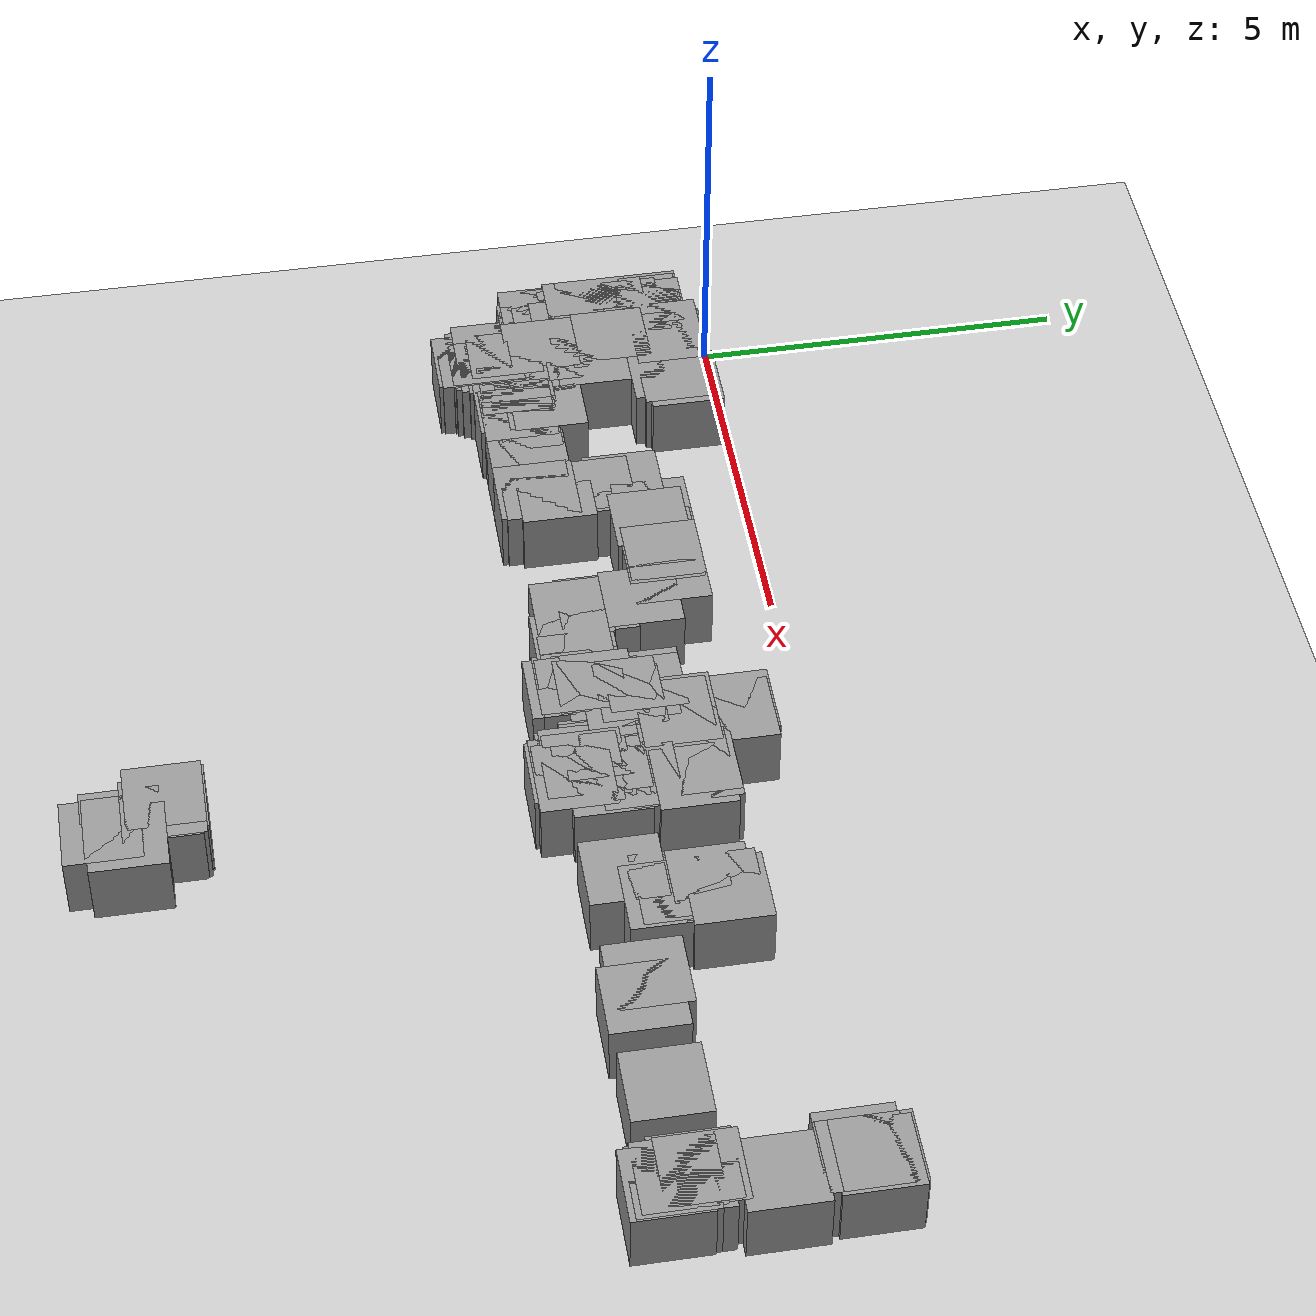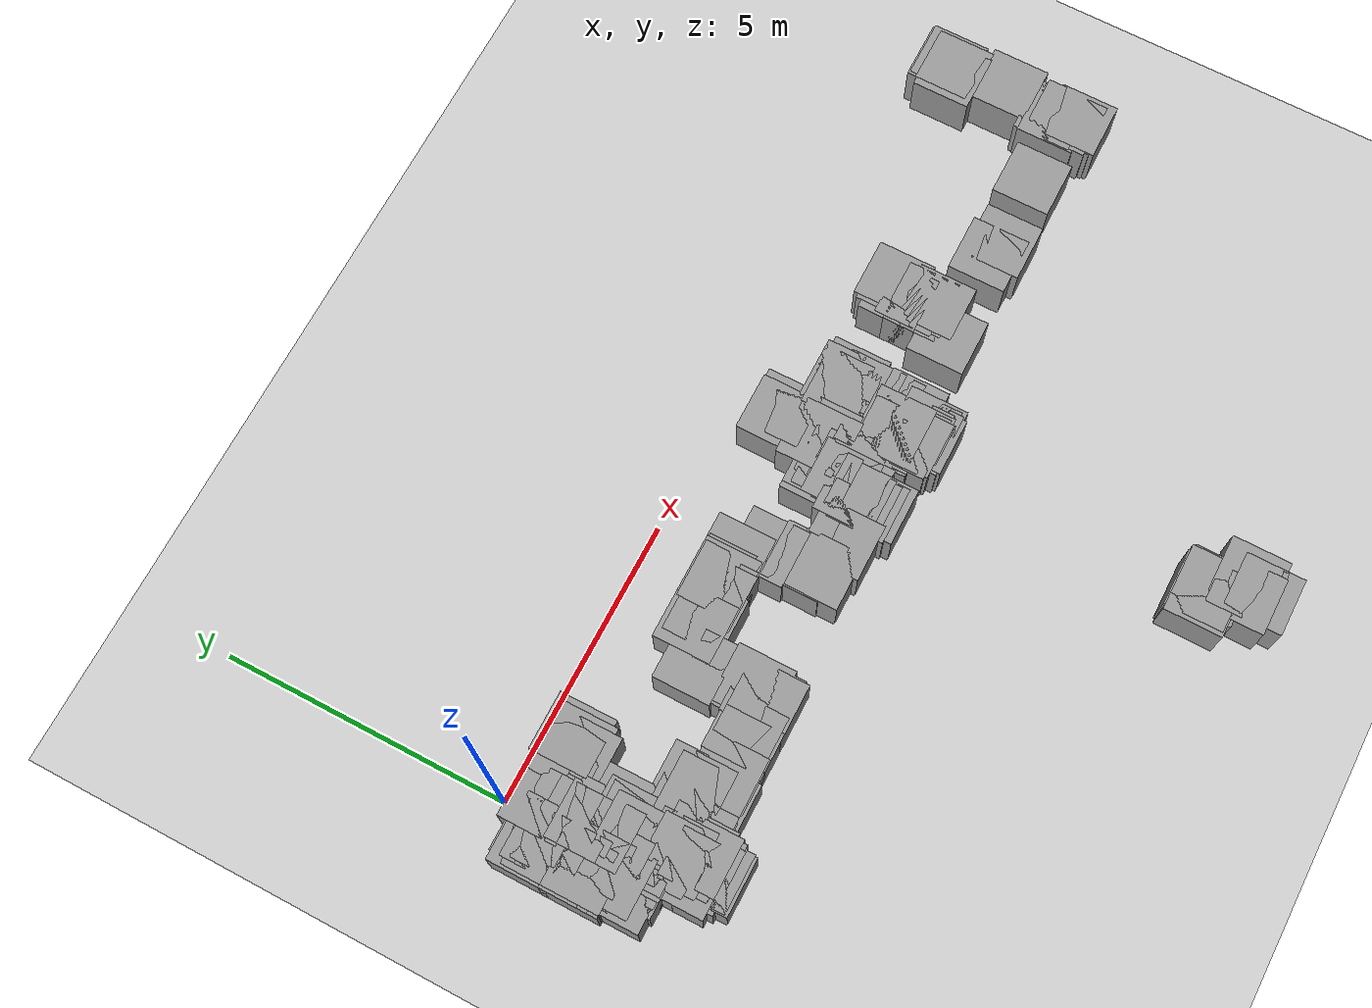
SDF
<sdf version="1.7">
 <world name="default">
  <model name="ground_plane">
   <static>1</static>
   <link name="link">
    <collision name="collision">
     <geometry><plane><normal>0 0 1</normal><size>100 100</size></plane></geometry>
     <surface>
      <contact><collide_bitmask>65535</collide_bitmask></contact>
      <friction><ode><mu>100</mu><mu2>50</mu2></ode></friction>
     </surface>
    </collision>
    <visual name="visual">
     <cast_shadows>0</cast_shadows>
     <geometry><plane><normal>0 0 1</normal><size>100 100</size></plane></geometry>
     <material>
      <script><uri>file://media/materials/scripts/gazebo.material</uri><name>Gazebo/Grey</name></script>
     </material>
    </visual>
   </link>
  </model>
  <include>
   <uri>model://unit_box</uri>
   <name>map_box_289</name>
   <pose>14.4575 -0.5850 0.3500 0 0 0</pose>
   <scale>0.050 4.100 0.700</scale>
  </include>
  <include>
   <uri>model://unit_box</uri>
   <name>map_box_348</name>
   <pose>0.2075 -0.6350 0.3500 0 0 0</pose>
   <scale>0.050 0.300 0.700</scale>
  </include>
  <include>
   <uri>model://unit_box</uri>
   <name>map_box_350</name>
   <pose>0.3575 -1.5100 0.3500 0 0 0</pose>
   <scale>0.050 1.950 0.700</scale>
  </include>
  <include>
   <uri>model://unit_box</uri>
   <name>map_box_351</name>
   <pose>1.3075 -0.5600 0.3500 0 0 0</pose>
   <scale>0.050 0.050 0.700</scale>
  </include>
  <include>
   <uri>model://unit_box</uri>
   <name>map_box_352</name>
   <pose>14.4075 -0.5600 0.3500 0 0 0</pose>
   <scale>0.050 0.050 0.700</scale>
  </include>
  <include>
   <uri>model://unit_box</uri>
   <name>map_box_353</name>
   <pose>0.4075 -0.6100 0.3500 0 0 0</pose>
   <scale>0.050 0.050 0.700</scale>
  </include>
  <include>
   <uri>model://unit_box</uri>
   <name>map_box_354</name>
   <pose>1.2075 -0.6350 0.3500 0 0 0</pose>
   <scale>0.050 0.100 0.700</scale>
  </include>
  <include>
   <uri>model://unit_box</uri>
   <name>map_box_355</name>
   <pose>14.4075 -0.7100 0.3500 0 0 0</pose>
   <scale>0.050 0.150 0.700</scale>
  </include>
  <include>
   <uri>model://unit_box</uri>
   <name>map_box_356</name>
   <pose>-0.4425 -0.8100 0.3500 0 0 0</pose>
   <scale>0.050 0.250 0.700</scale>
  </include>
  <include>
   <uri>model://unit_box</uri>
   <name>map_box_357</name>
   <pose>14.2825 -0.7350 0.3500 0 0 0</pose>
   <scale>0.200 0.100 0.700</scale>
  </include>
  <include>
   <uri>model://unit_box</uri>
   <name>map_box_358</name>
   <pose>-0.2925 -0.7850 0.3500 0 0 0</pose>
   <scale>0.150 0.100 0.700</scale>
  </include>
  <include>
   <uri>model://unit_box</uri>
   <name>map_box_359</name>
   <pose>1.1075 -0.7600 0.3500 0 0 0</pose>
   <scale>0.050 0.050 0.700</scale>
  </include>
  <include>
   <uri>model://unit_box</uri>
   <name>map_box_360</name>
   <pose>14.5075 -1.6850 0.3500 0 0 0</pose>
   <scale>0.050 1.900 0.700</scale>
  </include>
  <include>
   <uri>model://unit_box</uri>
   <name>map_box_361</name>
   <pose>-0.3925 -0.8350 0.3500 0 0 0</pose>
   <scale>0.050 0.100 0.700</scale>
  </include>
  <include>
   <uri>model://unit_box</uri>
   <name>map_box_362</name>
   <pose>-0.2425 -0.8850 0.3500 0 0 0</pose>
   <scale>0.050 0.100 0.700</scale>
  </include>
  <include>
   <uri>model://unit_box</uri>
   <name>map_box_363</name>
   <pose>-0.2925 -0.9600 0.3500 0 0 0</pose>
   <scale>0.050 0.150 0.700</scale>
  </include>
  <include>
   <uri>model://unit_box</uri>
   <name>map_box_364</name>
   <pose>0.2075 -0.9350 0.3500 0 0 0</pose>
   <scale>0.050 0.100 0.700</scale>
  </include>
  <include>
   <uri>model://unit_box</uri>
   <name>map_box_365</name>
   <pose>7.3825 -0.9350 0.3500 0 0 0</pose>
   <scale>0.200 0.100 0.700</scale>
  </include>
  <include>
   <uri>model://unit_box</uri>
   <name>map_box_366</name>
   <pose>7.5075 -0.9600 0.3500 0 0 0</pose>
   <scale>0.050 0.050 0.700</scale>
  </include>
  <include>
   <uri>model://unit_box</uri>
   <name>map_box_367</name>
   <pose>-0.2425 -1.0350 0.3500 0 0 0</pose>
   <scale>0.050 0.100 0.700</scale>
  </include>
  <include>
   <uri>model://unit_box</uri>
   <name>map_box_368</name>
   <pose>7.3075 -1.6850 0.3500 0 0 0</pose>
   <scale>0.050 1.400 0.700</scale>
  </include>
  <include>
   <uri>model://unit_box</uri>
   <name>map_box_369</name>
   <pose>7.4575 -1.6850 0.3500 0 0 0</pose>
   <scale>0.050 1.400 0.700</scale>
  </include>
  <include>
   <uri>model://unit_box</uri>
   <name>map_box_370</name>
   <pose>0.2075 -1.0600 0.3500 0 0 0</pose>
   <scale>0.050 0.050 0.700</scale>
  </include>
  <include>
   <uri>model://unit_box</uri>
   <name>map_box_371</name>
   <pose>7.5075 -1.7100 0.3500 0 0 0</pose>
   <scale>0.050 1.350 0.700</scale>
  </include>
  <include>
   <uri>model://unit_box</uri>
   <name>map_box_372</name>
   <pose>-0.3425 -1.1100 0.3500 0 0 0</pose>
   <scale>0.050 0.050 0.700</scale>
  </include>
  <include>
   <uri>model://unit_box</uri>
   <name>map_box_373</name>
   <pose>-0.2425 -1.1600 0.3500 0 0 0</pose>
   <scale>0.050 0.050 0.700</scale>
  </include>
  <include>
   <uri>model://unit_box</uri>
   <name>map_box_374</name>
   <pose>0.2075 -1.2100 0.3500 0 0 0</pose>
   <scale>0.050 0.050 0.700</scale>
  </include>
  <include>
   <uri>model://unit_box</uri>
   <name>map_box_375</name>
   <pose>0.3075 -1.6350 0.3500 0 0 0</pose>
   <scale>0.050 0.900 0.700</scale>
  </include>
  <include>
   <uri>model://unit_box</uri>
   <name>map_box_376</name>
   <pose>0.2575 -1.2850 0.3500 0 0 0</pose>
   <scale>0.050 0.100 0.700</scale>
  </include>
  <include>
   <uri>model://unit_box</uri>
   <name>map_box_377</name>
   <pose>-0.3925 -1.3100 0.3500 0 0 0</pose>
   <scale>0.050 0.050 0.700</scale>
  </include>
  <include>
   <uri>model://unit_box</uri>
   <name>map_box_378</name>
   <pose>-0.3425 -1.3850 0.3500 0 0 0</pose>
   <scale>0.050 0.100 0.700</scale>
  </include>
  <include>
   <uri>model://unit_box</uri>
   <name>map_box_379</name>
   <pose>3.7325 -1.3850 0.3500 0 0 0</pose>
   <scale>1.100 0.100 0.700</scale>
  </include>
  <include>
   <uri>model://unit_box</uri>
   <name>map_box_380</name>
   <pose>4.3825 -1.3850 0.3500 0 0 0</pose>
   <scale>0.100 0.100 0.700</scale>
  </include>
  <include>
   <uri>model://unit_box</uri>
   <name>map_box_381</name>
   <pose>4.5575 -1.3850 0.3500 0 0 0</pose>
   <scale>0.050 0.100 0.700</scale>
  </include>
  <include>
   <uri>model://unit_box</uri>
   <name>map_box_382</name>
   <pose>4.9825 -1.3850 0.3500 0 0 0</pose>
   <scale>0.700 0.100 0.700</scale>
  </include>
  <include>
   <uri>model://unit_box</uri>
   <name>map_box_383</name>
   <pose>0.2575 -1.4100 0.3500 0 0 0</pose>
   <scale>0.050 0.050 0.700</scale>
  </include>
  <include>
   <uri>model://unit_box</uri>
   <name>map_box_384</name>
   <pose>3.1575 -1.6850 0.3500 0 0 0</pose>
   <scale>0.050 0.600 0.700</scale>
  </include>
  <include>
   <uri>model://unit_box</uri>
   <name>map_box_385</name>
   <pose>4.3075 -1.4100 0.3500 0 0 0</pose>
   <scale>0.050 0.050 0.700</scale>
  </include>
  <include>
   <uri>model://unit_box</uri>
   <name>map_box_386</name>
   <pose>4.4825 -1.4100 0.3500 0 0 0</pose>
   <scale>0.100 0.050 0.700</scale>
  </include>
  <include>
   <uri>model://unit_box</uri>
   <name>map_box_387</name>
   <pose>4.6075 -1.4100 0.3500 0 0 0</pose>
   <scale>0.050 0.050 0.700</scale>
  </include>
  <include>
   <uri>model://unit_box</uri>
   <name>map_box_388</name>
   <pose>-0.4425 -1.5350 0.3500 0 0 0</pose>
   <scale>0.050 0.200 0.700</scale>
  </include>
  <include>
   <uri>model://unit_box</uri>
   <name>map_box_389</name>
   <pose>3.2075 -2.0850 0.3500 0 0 0</pose>
   <scale>0.050 1.300 0.700</scale>
  </include>
  <include>
   <uri>model://unit_box</uri>
   <name>map_box_390</name>
   <pose>3.9075 -1.4600 0.3500 0 0 0</pose>
   <scale>0.050 0.050 0.700</scale>
  </include>
  <include>
   <uri>model://unit_box</uri>
   <name>map_box_391</name>
   <pose>5.3325 -1.8100 0.3500 0 0 0</pose>
   <scale>0.100 0.750 0.700</scale>
  </include>
  <include>
   <uri>model://unit_box</uri>
   <name>map_box_392</name>
   <pose>8.4075 -1.5850 0.3500 0 0 0</pose>
   <scale>0.150 0.200 0.700</scale>
  </include>
  <include>
   <uri>model://unit_box</uri>
   <name>map_box_393</name>
   <pose>10.2825 -1.6350 0.3500 0 0 0</pose>
   <scale>0.100 0.300 0.700</scale>
  </include>
  <include>
   <uri>model://unit_box</uri>
   <name>map_box_394</name>
   <pose>8.3075 -1.5850 0.3500 0 0 0</pose>
   <scale>0.050 0.100 0.700</scale>
  </include>
  <include>
   <uri>model://unit_box</uri>
   <name>map_box_395</name>
   <pose>10.2075 -2.0100 0.3500 0 0 0</pose>
   <scale>0.050 0.950 0.700</scale>
  </include>
  <include>
   <uri>model://unit_box</uri>
   <name>map_box_396</name>
   <pose>10.3575 -1.5600 0.3500 0 0 0</pose>
   <scale>0.050 0.050 0.700</scale>
  </include>
  <include>
   <uri>model://unit_box</uri>
   <name>map_box_397</name>
   <pose>0.2575 -1.6350 0.3500 0 0 0</pose>
   <scale>0.050 0.100 0.700</scale>
  </include>
  <include>
   <uri>model://unit_box</uri>
   <name>map_box_398</name>
   <pose>8.5075 -1.6600 0.3500 0 0 0</pose>
   <scale>0.050 0.150 0.700</scale>
  </include>
  <include>
   <uri>model://unit_box</uri>
   <name>map_box_399</name>
   <pose>10.1575 -1.7350 0.3500 0 0 0</pose>
   <scale>0.050 0.300 0.700</scale>
  </include>
  <include>
   <uri>model://unit_box</uri>
   <name>map_box_400</name>
   <pose>-0.3925 -1.7100 0.3500 0 0 0</pose>
   <scale>0.050 0.150 0.700</scale>
  </include>
  <include>
   <uri>model://unit_box</uri>
   <name>map_box_401</name>
   <pose>8.2575 -1.6600 0.3500 0 0 0</pose>
   <scale>0.050 0.050 0.700</scale>
  </include>
  <include>
   <uri>model://unit_box</uri>
   <name>map_box_402</name>
   <pose>-0.4425 -1.7100 0.3500 0 0 0</pose>
   <scale>0.050 0.050 0.700</scale>
  </include>
  <include>
   <uri>model://unit_box</uri>
   <name>map_box_403</name>
   <pose>-0.2425 -1.7350 0.3500 0 0 0</pose>
   <scale>0.250 0.100 0.700</scale>
  </include>
  <include>
   <uri>model://unit_box</uri>
   <name>map_box_404</name>
   <pose>7.3575 -1.7350 0.3500 0 0 0</pose>
   <scale>0.050 0.100 0.700</scale>
  </include>
  <include>
   <uri>model://unit_box</uri>
   <name>map_box_405</name>
   <pose>8.4325 -1.9850 0.3500 0 0 0</pose>
   <scale>0.100 0.600 0.700</scale>
  </include>
  <include>
   <uri>model://unit_box</uri>
   <name>map_box_406</name>
   <pose>-0.0925 -1.7850 0.3500 0 0 0</pose>
   <scale>0.050 0.100 0.700</scale>
  </include>
  <include>
   <uri>model://unit_box</uri>
   <name>map_box_407</name>
   <pose>0.7075 -1.7600 0.3500 0 0 0</pose>
   <scale>0.050 0.050 0.700</scale>
  </include>
  <include>
   <uri>model://unit_box</uri>
   <name>map_box_408</name>
   <pose>-0.2925 -1.8100 0.3500 0 0 0</pose>
   <scale>0.050 0.050 0.700</scale>
  </include>
  <include>
   <uri>model://unit_box</uri>
   <name>map_box_409</name>
   <pose>-0.1425 -1.8100 0.3500 0 0 0</pose>
   <scale>0.050 0.050 0.700</scale>
  </include>
  <include>
   <uri>model://unit_box</uri>
   <name>map_box_410</name>
   <pose>10.2575 -2.1600 0.3500 0 0 0</pose>
   <scale>0.050 0.750 0.700</scale>
  </include>
  <include>
   <uri>model://unit_box</uri>
   <name>map_box_411</name>
   <pose>0.4075 -1.8600 0.3500 0 0 0</pose>
   <scale>0.050 0.050 0.700</scale>
  </include>
  <include>
   <uri>model://unit_box</uri>
   <name>map_box_412</name>
   <pose>0.5575 -1.8850 0.3500 0 0 0</pose>
   <scale>0.050 0.100 0.700</scale>
  </include>
  <include>
   <uri>model://unit_box</uri>
   <name>map_box_413</name>
   <pose>7.3575 -2.1100 0.3500 0 0 0</pose>
   <scale>0.050 0.550 0.700</scale>
  </include>
  <include>
   <uri>model://unit_box</uri>
   <name>map_box_414</name>
   <pose>-0.0675 -1.9600 0.3500 0 0 0</pose>
   <scale>0.100 0.050 0.700</scale>
  </include>
  <include>
   <uri>model://unit_box</uri>
   <name>map_box_415</name>
   <pose>6.9075 -2.0100 0.3500 0 0 0</pose>
   <scale>0.150 0.150 0.700</scale>
  </include>
  <include>
   <uri>model://unit_box</uri>
   <name>map_box_416</name>
   <pose>6.8075 -2.0100 0.3500 0 0 0</pose>
   <scale>0.050 0.050 0.700</scale>
  </include>
  <include>
   <uri>model://unit_box</uri>
   <name>map_box_417</name>
   <pose>-0.3425 -2.0600 0.3500 0 0 0</pose>
   <scale>0.050 0.050 0.700</scale>
  </include>
  <include>
   <uri>model://unit_box</uri>
   <name>map_box_418</name>
   <pose>0.4075 -2.0850 0.3500 0 0 0</pose>
   <scale>0.050 0.100 0.700</scale>
  </include>
  <include>
   <uri>model://unit_box</uri>
   <name>map_box_419</name>
   <pose>7.0075 -2.0850 0.3500 0 0 0</pose>
   <scale>0.050 0.100 0.700</scale>
  </include>
  <include>
   <uri>model://unit_box</uri>
   <name>map_box_420</name>
   <pose>-0.2675 -2.1100 0.3500 0 0 0</pose>
   <scale>0.100 0.050 0.700</scale>
  </include>
  <include>
   <uri>model://unit_box</uri>
   <name>map_box_421</name>
   <pose>6.9575 -2.1350 0.3500 0 0 0</pose>
   <scale>0.050 0.100 0.700</scale>
  </include>
  <include>
   <uri>model://unit_box</uri>
   <name>map_box_422</name>
   <pose>0.3075 -2.4100 0.3500 0 0 0</pose>
   <scale>0.050 0.550 0.700</scale>
  </include>
  <include>
   <uri>model://unit_box</uri>
   <name>map_box_423</name>
   <pose>10.1575 -2.1850 0.3500 0 0 0</pose>
   <scale>0.050 0.100 0.700</scale>
  </include>
  <include>
   <uri>model://unit_box</uri>
   <name>map_box_424</name>
   <pose>-0.0425 -2.2100 0.3500 0 0 0</pose>
   <scale>0.050 0.050 0.700</scale>
  </include>
  <include>
   <uri>model://unit_box</uri>
   <name>map_box_425</name>
   <pose>5.3825 -2.4100 0.3500 0 0 0</pose>
   <scale>0.100 0.450 0.700</scale>
  </include>
  <include>
   <uri>model://unit_box</uri>
   <name>map_box_426</name>
   <pose>7.0575 -2.3100 0.3500 0 0 0</pose>
   <scale>0.150 0.150 0.700</scale>
  </include>
  <include>
   <uri>model://unit_box</uri>
   <name>map_box_427</name>
   <pose>10.3075 -2.3350 0.3500 0 0 0</pose>
   <scale>0.050 0.200 0.700</scale>
  </include>
  <include>
   <uri>model://unit_box</uri>
   <name>map_box_428</name>
   <pose>-0.0425 -2.3600 0.3500 0 0 0</pose>
   <scale>0.050 0.150 0.700</scale>
  </include>
  <include>
   <uri>model://unit_box</uri>
   <name>map_box_429</name>
   <pose>6.9075 -2.3350 0.3500 0 0 0</pose>
   <scale>0.150 0.100 0.700</scale>
  </include>
  <include>
   <uri>model://unit_box</uri>
   <name>map_box_430</name>
   <pose>7.2075 -2.3350 0.3500 0 0 0</pose>
   <scale>0.150 0.100 0.700</scale>
  </include>
  <include>
   <uri>model://unit_box</uri>
   <name>map_box_431</name>
   <pose>7.7325 -2.3350 0.3500 0 0 0</pose>
   <scale>0.400 0.100 0.700</scale>
  </include>
  <include>
   <uri>model://unit_box</uri>
   <name>map_box_432</name>
   <pose>8.4075 -2.3350 0.3500 0 0 0</pose>
   <scale>0.050 0.100 0.700</scale>
  </include>
  <include>
   <uri>model://unit_box</uri>
   <name>map_box_433</name>
   <pose>-0.3675 -2.3600 0.3500 0 0 0</pose>
   <scale>0.100 0.050 0.700</scale>
  </include>
  <include>
   <uri>model://unit_box</uri>
   <name>map_box_434</name>
   <pose>0.0575 -2.3850 0.3500 0 0 0</pose>
   <scale>0.150 0.100 0.700</scale>
  </include>
  <include>
   <uri>model://unit_box</uri>
   <name>map_box_435</name>
   <pose>0.2575 -2.3850 0.3500 0 0 0</pose>
   <scale>0.050 0.100 0.700</scale>
  </include>
  <include>
   <uri>model://unit_box</uri>
   <name>map_box_436</name>
   <pose>-0.0925 -2.4100 0.3500 0 0 0</pose>
   <scale>0.050 0.050 0.700</scale>
  </include>
  <include>
   <uri>model://unit_box</uri>
   <name>map_box_437</name>
   <pose>0.1825 -2.4100 0.3500 0 0 0</pose>
   <scale>0.100 0.050 0.700</scale>
  </include>
  <include>
   <uri>model://unit_box</uri>
   <name>map_box_438</name>
   <pose>3.2575 -2.6350 0.3500 0 0 0</pose>
   <scale>0.050 0.500 0.700</scale>
  </include>
  <include>
   <uri>model://unit_box</uri>
   <name>map_box_439</name>
   <pose>6.8825 -2.5350 0.3500 0 0 0</pose>
   <scale>0.100 0.300 0.700</scale>
  </include>
  <include>
   <uri>model://unit_box</uri>
   <name>map_box_440</name>
   <pose>7.9325 -2.4100 0.3500 0 0 0</pose>
   <scale>0.100 0.050 0.700</scale>
  </include>
  <include>
   <uri>model://unit_box</uri>
   <name>map_box_441</name>
   <pose>1.4825 -2.4850 0.3500 0 0 0</pose>
   <scale>0.100 0.100 0.700</scale>
  </include>
  <include>
   <uri>model://unit_box</uri>
   <name>map_box_442</name>
   <pose>7.8825 -2.4600 0.3500 0 0 0</pose>
   <scale>0.100 0.050 0.700</scale>
  </include>
  <include>
   <uri>model://unit_box</uri>
   <name>map_box_443</name>
   <pose>0.2575 -2.5850 0.3500 0 0 0</pose>
   <scale>0.050 0.200 0.700</scale>
  </include>
  <include>
   <uri>model://unit_box</uri>
   <name>map_box_444</name>
   <pose>7.9075 -2.7100 0.3500 0 0 0</pose>
   <scale>0.050 0.450 0.700</scale>
  </include>
  <include>
   <uri>model://unit_box</uri>
   <name>map_box_445</name>
   <pose>1.4575 -2.5600 0.3500 0 0 0</pose>
   <scale>0.050 0.050 0.700</scale>
  </include>
  <include>
   <uri>model://unit_box</uri>
   <name>map_box_446</name>
   <pose>7.8575 -2.5600 0.3500 0 0 0</pose>
   <scale>0.050 0.050 0.700</scale>
  </include>
  <include>
   <uri>model://unit_box</uri>
   <name>map_box_447</name>
   <pose>8.0075 -2.6600 0.3500 0 0 0</pose>
   <scale>0.150 0.250 0.700</scale>
  </include>
  <include>
   <uri>model://unit_box</uri>
   <name>map_box_448</name>
   <pose>14.3325 -2.5850 0.3500 0 0 0</pose>
   <scale>0.200 0.100 0.700</scale>
  </include>
  <include>
   <uri>model://unit_box</uri>
   <name>map_box_449</name>
   <pose>6.7325 -2.6350 0.3500 0 0 0</pose>
   <scale>0.200 0.100 0.700</scale>
  </include>
  <include>
   <uri>model://unit_box</uri>
   <name>map_box_450</name>
   <pose>8.1075 -2.6850 0.3500 0 0 0</pose>
   <scale>0.050 0.200 0.700</scale>
  </include>
  <include>
   <uri>model://unit_box</uri>
   <name>map_box_451</name>
   <pose>0.3825 -2.6850 0.3500 0 0 0</pose>
   <scale>0.100 0.100 0.700</scale>
  </include>
  <include>
   <uri>model://unit_box</uri>
   <name>map_box_452</name>
   <pose>1.3825 -2.6600 0.3500 0 0 0</pose>
   <scale>0.100 0.050 0.700</scale>
  </include>
  <include>
   <uri>model://unit_box</uri>
   <name>map_box_453</name>
   <pose>5.4075 -2.7350 0.3500 0 0 0</pose>
   <scale>0.050 0.200 0.700</scale>
  </include>
  <include>
   <uri>model://unit_box</uri>
   <name>map_box_454</name>
   <pose>8.2325 -2.7350 0.3500 0 0 0</pose>
   <scale>0.200 0.200 0.700</scale>
  </include>
  <include>
   <uri>model://unit_box</uri>
   <name>map_box_455</name>
   <pose>14.3075 -2.6600 0.3500 0 0 0</pose>
   <scale>0.150 0.050 0.700</scale>
  </include>
  <include>
   <uri>model://unit_box</uri>
   <name>map_box_456</name>
   <pose>0.5075 -2.7350 0.3500 0 0 0</pose>
   <scale>0.150 0.100 0.700</scale>
  </include>
  <include>
   <uri>model://unit_box</uri>
   <name>map_box_457</name>
   <pose>6.6825 -2.7600 0.3500 0 0 0</pose>
   <scale>0.100 0.150 0.700</scale>
  </include>
  <include>
   <uri>model://unit_box</uri>
   <name>map_box_458</name>
   <pose>7.8575 -2.7100 0.3500 0 0 0</pose>
   <scale>0.050 0.050 0.700</scale>
  </include>
  <include>
   <uri>model://unit_box</uri>
   <name>map_box_459</name>
   <pose>8.4575 -2.7350 0.3500 0 0 0</pose>
   <scale>0.250 0.100 0.700</scale>
  </include>
  <include>
   <uri>model://unit_box</uri>
   <name>map_box_460</name>
   <pose>11.4825 -2.7350 0.3500 0 0 0</pose>
   <scale>0.700 0.100 0.700</scale>
  </include>
  <include>
   <uri>model://unit_box</uri>
   <name>map_box_461</name>
   <pose>14.4075 -2.7600 0.3500 0 0 0</pose>
   <scale>0.150 0.150 0.700</scale>
  </include>
  <include>
   <uri>model://unit_box</uri>
   <name>map_box_462</name>
   <pose>0.3325 -2.7600 0.3500 0 0 0</pose>
   <scale>0.100 0.050 0.700</scale>
  </include>
  <include>
   <uri>model://unit_box</uri>
   <name>map_box_463</name>
   <pose>6.3575 -2.7600 0.3500 0 0 0</pose>
   <scale>0.550 0.050 0.700</scale>
  </include>
  <include>
   <uri>model://unit_box</uri>
   <name>map_box_464</name>
   <pose>9.8575 -2.7600 0.3500 0 0 0</pose>
   <scale>2.550 0.050 0.700</scale>
  </include>
  <include>
   <uri>model://unit_box</uri>
   <name>map_box_465</name>
   <pose>13.0825 -2.7850 0.3500 0 0 0</pose>
   <scale>2.500 0.100 0.700</scale>
  </include>
  <include>
   <uri>model://unit_box</uri>
   <name>map_box_466</name>
   <pose>0.5075 -2.8100 0.3500 0 0 0</pose>
   <scale>0.050 0.050 0.700</scale>
  </include>
  <include>
   <uri>model://unit_box</uri>
   <name>map_box_467</name>
   <pose>1.1575 -2.8600 0.3500 0 0 0</pose>
   <scale>0.050 0.150 0.700</scale>
  </include>
  <include>
   <uri>model://unit_box</uri>
   <name>map_box_468</name>
   <pose>3.1825 -2.8350 0.3500 0 0 0</pose>
   <scale>0.100 0.100 0.700</scale>
  </include>
  <include>
   <uri>model://unit_box</uri>
   <name>map_box_469</name>
   <pose>5.9825 -2.8100 0.3500 0 0 0</pose>
   <scale>1.100 0.050 0.700</scale>
  </include>
  <include>
   <uri>model://unit_box</uri>
   <name>map_box_470</name>
   <pose>6.7575 -2.8600 0.3500 0 0 0</pose>
   <scale>0.050 0.150 0.700</scale>
  </include>
  <include>
   <uri>model://unit_box</uri>
   <name>map_box_471</name>
   <pose>7.9825 -2.8600 0.3500 0 0 0</pose>
   <scale>0.100 0.150 0.700</scale>
  </include>
  <include>
   <uri>model://unit_box</uri>
   <name>map_box_472</name>
   <pose>11.8075 -2.8350 0.3500 0 0 0</pose>
   <scale>0.050 0.100 0.700</scale>
  </include>
  <include>
   <uri>model://unit_box</uri>
   <name>map_box_473</name>
   <pose>0.4575 -2.8600 0.3500 0 0 0</pose>
   <scale>0.050 0.050 0.700</scale>
  </include>
  <include>
   <uri>model://unit_box</uri>
   <name>map_box_474</name>
   <pose>1.1075 -2.8850 0.3500 0 0 0</pose>
   <scale>0.050 0.100 0.700</scale>
  </include>
  <include>
   <uri>model://unit_box</uri>
   <name>map_box_475</name>
   <pose>1.3075 -2.8850 0.3500 0 0 0</pose>
   <scale>0.250 0.100 0.700</scale>
  </include>
  <include>
   <uri>model://unit_box</uri>
   <name>map_box_476</name>
   <pose>1.8575 -2.8850 0.3500 0 0 0</pose>
   <scale>0.050 0.100 0.700</scale>
  </include>
  <include>
   <uri>model://unit_box</uri>
   <name>map_box_477</name>
   <pose>2.5575 -2.8600 0.3500 0 0 0</pose>
   <scale>1.150 0.050 0.700</scale>
  </include>
  <include>
   <uri>model://unit_box</uri>
   <name>map_box_478</name>
   <pose>6.7075 -2.8850 0.3500 0 0 0</pose>
   <scale>0.050 0.100 0.700</scale>
  </include>
  <include>
   <uri>model://unit_box</uri>
   <name>map_box_479</name>
   <pose>8.0575 -2.9600 0.3500 0 0 0</pose>
   <scale>0.050 0.250 0.700</scale>
  </include>
  <include>
   <uri>model://unit_box</uri>
   <name>map_box_480</name>
   <pose>8.2575 -2.8600 0.3500 0 0 0</pose>
   <scale>0.150 0.050 0.700</scale>
  </include>
  <include>
   <uri>model://unit_box</uri>
   <name>map_box_481</name>
   <pose>14.3575 -2.8600 0.3500 0 0 0</pose>
   <scale>0.150 0.050 0.700</scale>
  </include>
  <include>
   <uri>model://unit_box</uri>
   <name>map_box_482</name>
   <pose>0.3575 -2.9350 0.3500 0 0 0</pose>
   <scale>0.050 0.100 0.700</scale>
  </include>
  <include>
   <uri>model://unit_box</uri>
   <name>map_box_483</name>
   <pose>0.8825 -2.9100 0.3500 0 0 0</pose>
   <scale>0.400 0.050 0.700</scale>
  </include>
  <include>
   <uri>model://unit_box</uri>
   <name>map_box_484</name>
   <pose>1.6325 -2.9100 0.3500 0 0 0</pose>
   <scale>0.400 0.050 0.700</scale>
  </include>
  <include>
   <uri>model://unit_box</uri>
   <name>map_box_485</name>
   <pose>2.3075 -2.9100 0.3500 0 0 0</pose>
   <scale>0.850 0.050 0.700</scale>
  </include>
  <include>
   <uri>model://unit_box</uri>
   <name>map_box_486</name>
   <pose>3.1575 -2.9100 0.3500 0 0 0</pose>
   <scale>0.050 0.050 0.700</scale>
  </include>
  <include>
   <uri>model://unit_box</uri>
   <name>map_box_487</name>
   <pose>8.2075 -2.9100 0.3500 0 0 0</pose>
   <scale>0.150 0.050 0.700</scale>
  </include>
  <include>
   <uri>model://unit_box</uri>
   <name>map_box_488</name>
   <pose>14.4075 -2.9350 0.3500 0 0 0</pose>
   <scale>0.150 0.100 0.700</scale>
  </include>
  <include>
   <uri>model://unit_box</uri>
   <name>map_box_489</name>
   <pose>0.3075 -3.0850 0.3500 0 0 0</pose>
   <scale>0.050 0.300 0.700</scale>
  </include>
  <include>
   <uri>model://unit_box</uri>
   <name>map_box_490</name>
   <pose>0.6825 -2.9600 0.3500 0 0 0</pose>
   <scale>0.100 0.050 0.700</scale>
  </include>
  <include>
   <uri>model://unit_box</uri>
   <name>map_box_491</name>
   <pose>1.4575 -2.9600 0.3500 0 0 0</pose>
   <scale>0.050 0.050 0.700</scale>
  </include>
  <include>
   <uri>model://unit_box</uri>
   <name>map_box_492</name>
   <pose>7.9575 -2.9850 0.3500 0 0 0</pose>
   <scale>0.050 0.100 0.700</scale>
  </include>
  <include>
   <uri>model://unit_box</uri>
   <name>map_box_493</name>
   <pose>8.1575 -2.9600 0.3500 0 0 0</pose>
   <scale>0.050 0.050 0.700</scale>
  </include>
  <include>
   <uri>model://unit_box</uri>
   <name>map_box_494</name>
   <pose>8.2575 -3.0600 0.3500 0 0 0</pose>
   <scale>0.050 0.250 0.700</scale>
  </include>
  <include>
   <uri>model://unit_box</uri>
   <name>map_box_495</name>
   <pose>0.6575 -3.0100 0.3500 0 0 0</pose>
   <scale>0.050 0.050 0.700</scale>
  </include>
  <include>
   <uri>model://unit_box</uri>
   <name>map_box_496</name>
   <pose>6.7575 -3.0100 0.3500 0 0 0</pose>
   <scale>0.050 0.050 0.700</scale>
  </include>
  <include>
   <uri>model://unit_box</uri>
   <name>map_box_497</name>
   <pose>8.0075 -3.0350 0.3500 0 0 0</pose>
   <scale>0.050 0.100 0.700</scale>
  </include>
  <include>
   <uri>model://unit_box</uri>
   <name>map_box_498</name>
   <pose>8.1075 -3.0100 0.3500 0 0 0</pose>
   <scale>0.050 0.050 0.700</scale>
  </include>
  <include>
   <uri>model://unit_box</uri>
   <name>map_box_499</name>
   <pose>8.2075 -3.1100 0.3500 0 0 0</pose>
   <scale>0.050 0.250 0.700</scale>
  </include>
  <include>
   <uri>model://unit_box</uri>
   <name>map_box_500</name>
   <pose>14.4325 -3.0100 0.3500 0 0 0</pose>
   <scale>0.100 0.050 0.700</scale>
  </include>
  <include>
   <uri>model://unit_box</uri>
   <name>map_box_501</name>
   <pose>0.6075 -3.1100 0.3500 0 0 0</pose>
   <scale>0.050 0.150 0.700</scale>
  </include>
  <include>
   <uri>model://unit_box</uri>
   <name>map_box_502</name>
   <pose>0.2575 -3.1100 0.3500 0 0 0</pose>
   <scale>0.050 0.050 0.700</scale>
  </include>
  <include>
   <uri>model://unit_box</uri>
   <name>map_box_503</name>
   <pose>0.5575 -3.1850 0.3500 0 0 0</pose>
   <scale>0.050 0.200 0.700</scale>
  </include>
  <include>
   <uri>model://unit_box</uri>
   <name>map_box_504</name>
   <pose>8.1075 -3.1350 0.3500 0 0 0</pose>
   <scale>0.050 0.100 0.700</scale>
  </include>
  <include>
   <uri>model://unit_box</uri>
   <name>map_box_505</name>
   <pose>8.3075 -3.1350 0.3500 0 0 0</pose>
   <scale>0.050 0.100 0.700</scale>
  </include>
  <include>
   <uri>model://unit_box</uri>
   <name>map_box_506</name>
   <pose>0.3825 -3.2100 0.3500 0 0 0</pose>
   <scale>0.100 0.150 0.700</scale>
  </include>
  <include>
   <uri>model://unit_box</uri>
   <name>map_box_507</name>
   <pose>0.5075 -3.2100 0.3500 0 0 0</pose>
   <scale>0.050 0.150 0.700</scale>
  </include>
  <include>
   <uri>model://unit_box</uri>
   <name>map_box_508</name>
   <pose>8.1575 -3.1850 0.3500 0 0 0</pose>
   <scale>0.050 0.100 0.700</scale>
  </include>
  <include>
   <uri>model://unit_box</uri>
   <name>map_box_509</name>
   <pose>0.4575 -3.2100 0.3500 0 0 0</pose>
   <scale>0.050 0.050 0.700</scale>
  </include>
  <include>
   <uri>model://unit_box</uri>
   <name>map_box_510</name>
   <pose>0.4825 -3.3600 0.3500 0 0 0</pose>
   <scale>0.100 0.050 0.700</scale>
  </include>
  <include>
   <uri>model://unit_box</uri>
   <name>map_box_511</name>
   <pose>0.4575 -3.4100 0.3500 0 0 0</pose>
   <scale>0.050 0.050 0.700</scale>
  </include>
  <include>
   <uri>model://unit_box</uri>
   <name>map_box_512</name>
   <pose>7.8575 -8.1850 0.3500 0 0 0</pose>
   <scale>0.050 0.100 0.700</scale>
  </include>
  <include>
   <uri>model://unit_box</uri>
   <name>map_box_513</name>
   <pose>7.7825 -8.2100 0.3500 0 0 0</pose>
   <scale>0.100 0.050 0.700</scale>
  </include>
  <include>
   <uri>model://unit_box</uri>
   <name>map_box_514</name>
   <pose>7.9575 -8.2100 0.3500 0 0 0</pose>
   <scale>0.150 0.050 0.700</scale>
  </include>
  <include>
   <uri>model://unit_box</uri>
   <name>map_box_515</name>
   <pose>7.9825 -8.2600 0.3500 0 0 0</pose>
   <scale>0.100 0.050 0.700</scale>
  </include>
  <include>
   <uri>model://unit_box</uri>
   <name>map_box_516</name>
   <pose>8.2075 -8.7350 0.3500 0 0 0</pose>
   <scale>0.050 0.100 0.700</scale>
  </include>
  <include>
   <uri>model://unit_box</uri>
   <name>map_box_517</name>
   <pose>8.3825 -8.7100 0.3500 0 0 0</pose>
   <scale>0.100 0.050 0.700</scale>
  </include>
  <include>
   <uri>model://unit_box</uri>
   <name>map_box_518</name>
   <pose>8.1075 -8.7600 0.3500 0 0 0</pose>
   <scale>0.150 0.050 0.700</scale>
  </include>
  <include>
   <uri>model://unit_box</uri>
   <name>map_box_519</name>
   <pose>8.2325 -9.0100 0.3500 0 0 0</pose>
   <scale>0.100 0.050 0.700</scale>
  </include>
 </world>
</sdf>
